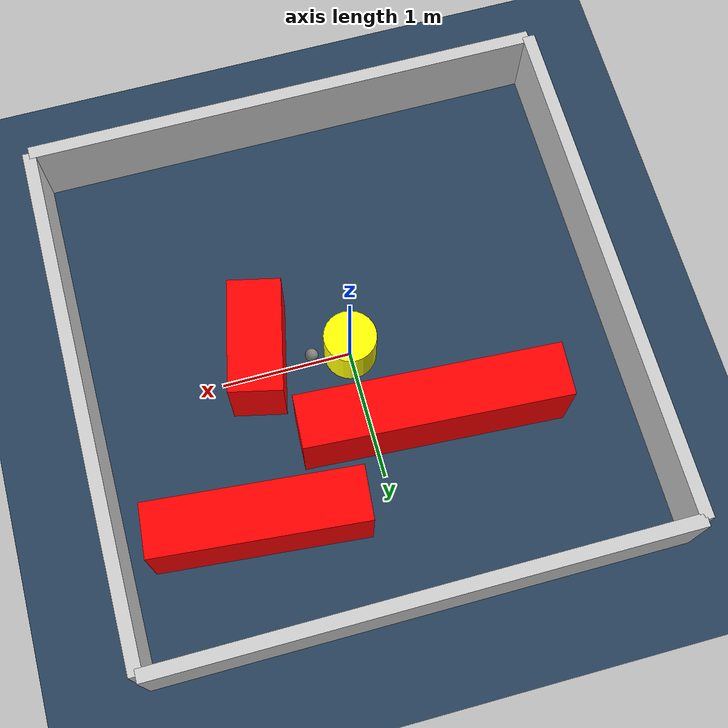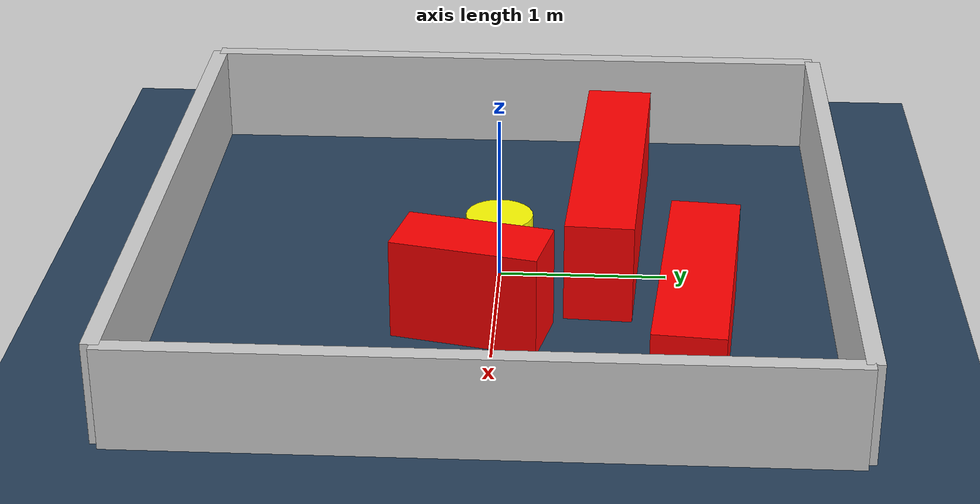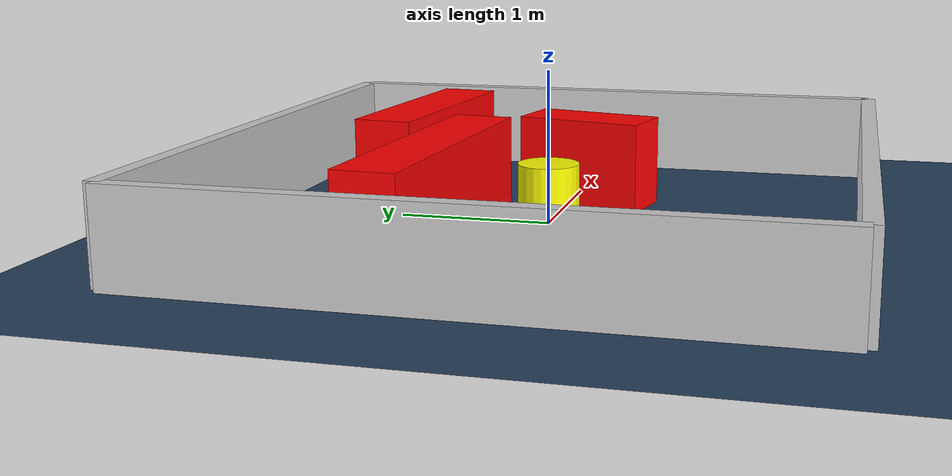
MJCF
<?xml version="1.0" ?>
<mujoco model="generated_environment">
  <option timestep="0.01" integrator="RK4" cone="elliptic"/>
  <default>
    <geom density="1"/>
  </default>
  <asset>
    <texture builtin="gradient" height="3072" rgb1="0.3 0.5 0.7" rgb2="0 0 0" type="skybox" width="512"/>
    <texture builtin="checker" height="300" mark="edge" markrgb="0.8 0.8 0.8" name="groundplane" rgb1="0.2 0.3 0.4" rgb2="0.1 0.2 0.3" type="2d" width="300"/>
    <material name="groundplane" reflectance="0.2" texrepeat="5 5" texture="groundplane" texuniform="true"/>
    <material name="robot" rgba="0.0 1.0 0.0 1"/>
  </asset>
  <worldbody>
    <light dir="0 0 -1" directional="true" pos="0 0 1.5"/>
    <geom condim="4" friction="1.0 0.005 0.001" material="groundplane" name="floor" size="0 0 0.05" type="plane"/>
    <body name="walls">
      <geom name="wall_1" condim="4" pos="-2.0 0.0 0.3" rgba="0.800000011920929 0.800000011920929 0.800000011920929 1.0" size="0.05 2.0 0.3" type="box"/>
      <geom name="wall_2" condim="4" pos="2.0 0.0 0.3" rgba="0.800000011920929 0.800000011920929 0.800000011920929 1.0" size="0.05 2.0 0.3" type="box"/>
      <geom name="wall_3" condim="4" pos="0.0 -2.0 0.3" rgba="0.800000011920929 0.800000011920929 0.800000011920929 1.0" size="2.0 0.05 0.3" type="box"/>
      <geom name="wall_4" condim="4" pos="0.0 2.0 0.3" rgba="0.800000011920929 0.800000011920929 0.800000011920929 1.0" size="2.0 0.05 0.3" type="box"/>
    </body>
    <body name="robot">
      <joint name="joint_x" type="slide" pos="0 0 0" axis="1 0 0"/>
      <joint name="joint_y" type="slide" pos="0 0 0" axis="0 1 0"/>
      <geom name="robot" type="sphere" pos="0.3 0.0 0.2" size="0.05" mass="5." friction="1.0 0.005 0.0001" condim="4" rgba="0.5 0.5 0.5 1.0"/>
      <site name="sensor_ball"/>
    </body>
    <body name="obstacle_movable_1">
      <geom name="obstacle_movable_1" condim="4" pos="0.0 0.0 0.2" euler="0 0 0.0" friction="1.0 0.005 0.001" rgba="1.0 1.0 0.0 1.0" size="0.2 0.2 0.0" type="cylinder" mass="0.1"/>
      <joint type="free"/>
    </body>
    <body name="obstacle_2_static">
      <geom name="obstacle_2_static" condim="4" pos="-0.4420536698471055 0.6530452334693122 0.3" euler="0 0 356.65197763650434" friction="1.0 0.005 0.001" rgba="1 0 0 1" size="0.9892486631869526 0.2 0.3" type="box"/>
    </body>
    <body name="obstacle_3_static">
      <geom name="obstacle_3_static" condim="4" pos="0.6829691931507322 -0.12275799397284826 0.3" euler="0 0 77.28924544356992" friction="1.0 0.005 0.001" rgba="1 0 0 1" size="0.4305056613939221 0.2 0.3" type="box"/>
    </body>
    <body name="obstacle_4_static">
      <geom name="obstacle_4_static" condim="4" pos="0.9771855382553525 1.1383727484581272 0.3" euler="0 0 354.7852852337468" friction="1.0 0.005 0.001" rgba="1 0 0 1" size="0.7934390164985474 0.2 0.3" type="box"/>
    </body>
  </worldbody>
  <actuator>
    <motor name="actuator_x" joint="joint_x" gear="1" ctrlrange="-1 1"/>
    <motor name="actuator_y" joint="joint_y" gear="1" ctrlrange="-1 1"/>
  </actuator>
</mujoco>
